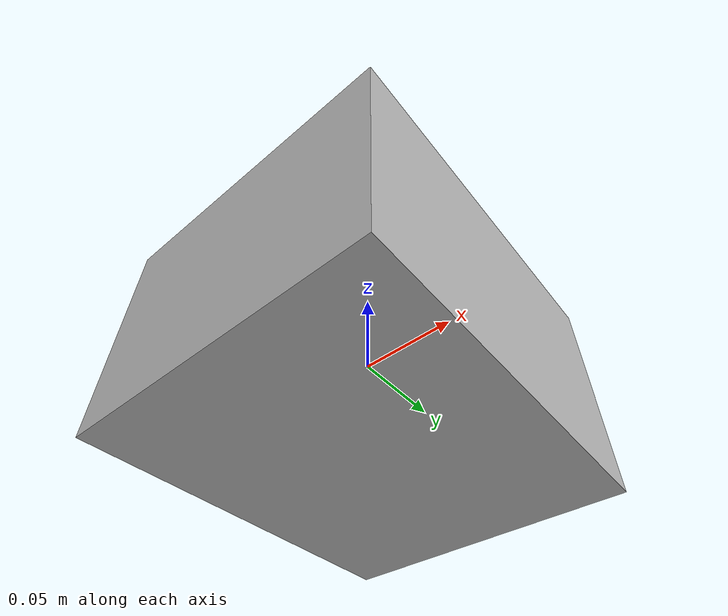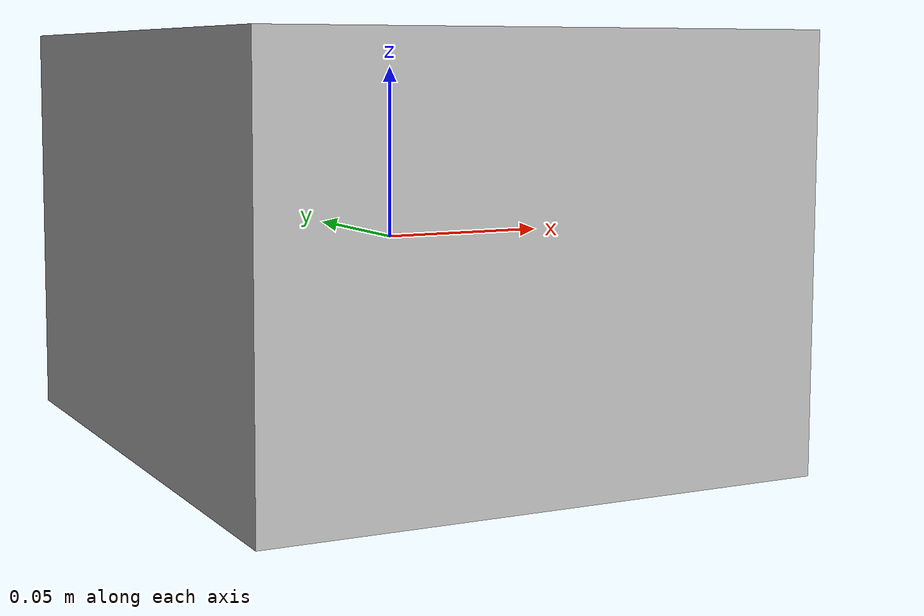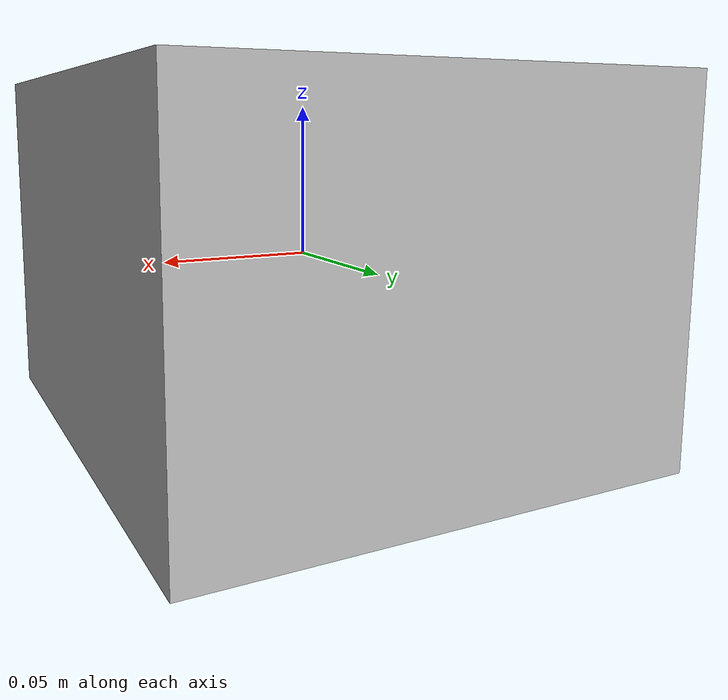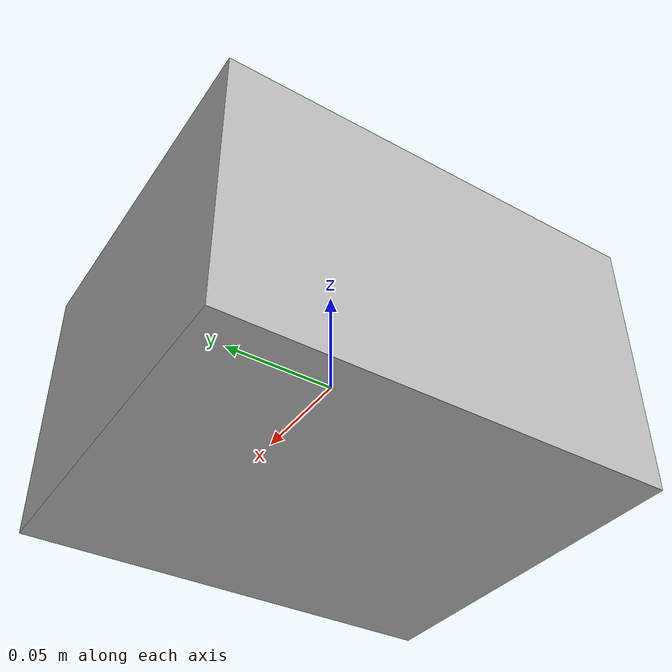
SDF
<?xml version="1.0"?>
<sdf version="1.6">
  <model name="sema_middle_little_box">
    <link name="sema_middle_little_box_link">
      <visual name="sema_middle_little_box_visual">
        <pose>0 0 0 0 0 0</pose>
        <geometry>
          <mesh>
            <uri>model://sema_middle_little_box/mesh/sema_middle_little_box.dae</uri>
          </mesh>
        </geometry>
        <origin xyz="0 0 0" rpy="0 0 0"/>
      </visual>
      <collision name="sema_middle_little_box_collision">
        <geometry>
          <box>
            <size>0.16 0.19 0.12</size>
          </box>
        </geometry>
        <surface>
          <friction>
            <ode>
              <mu>100.0</mu>
              <mu2>100.0</mu2>
            </ode>
          </friction>
        </surface>
      </collision>
      <inertial>
        <mass>0.84</mass>
        <inertia>
          <ixx>0.00355</ixx>
          <iyy>0.00281</iyy>
          <izz>0.00434</izz>
          <ixy>0</ixy>
          <ixz>0</ixz>
          <iyz>0</iyz>
        </inertia>
      </inertial>
    </link>
  </model>
</sdf>
